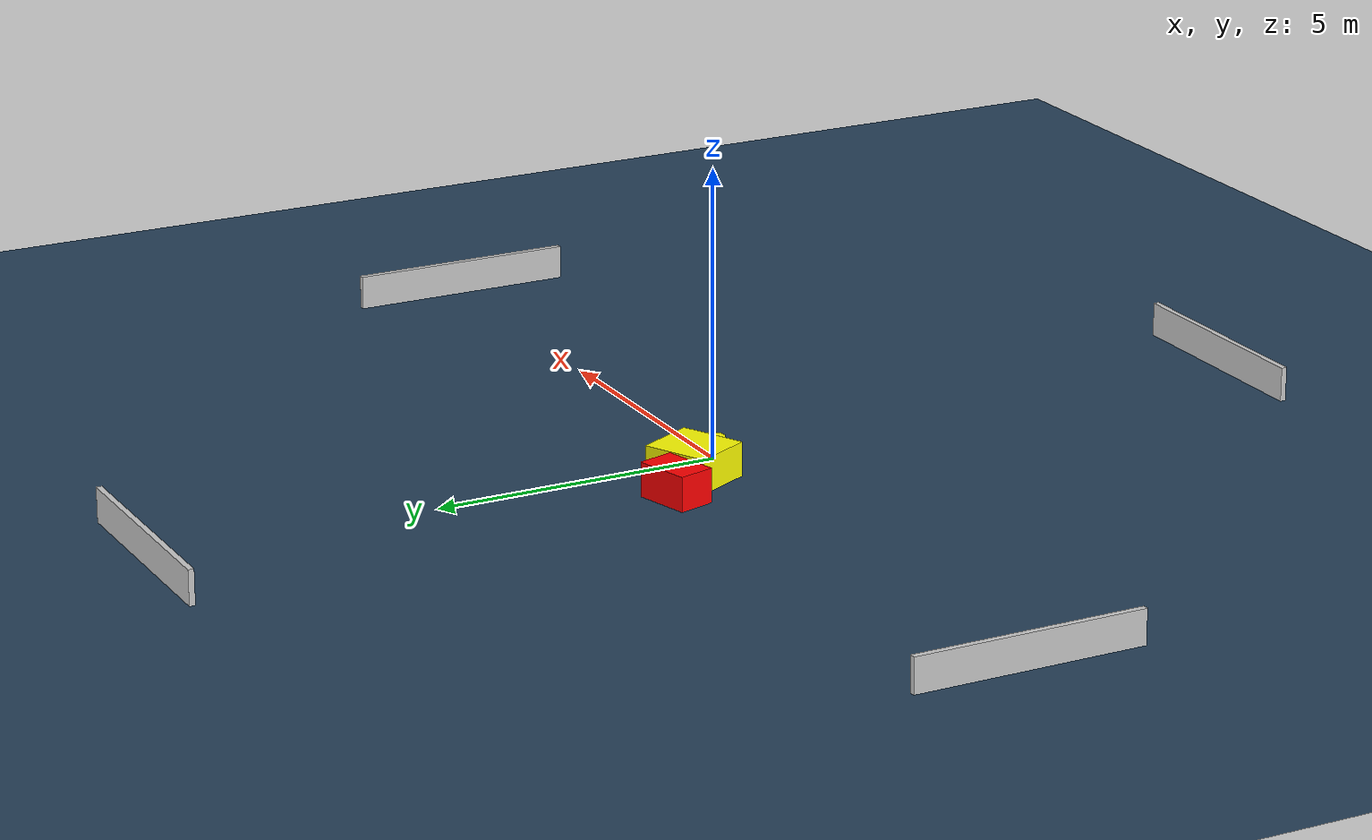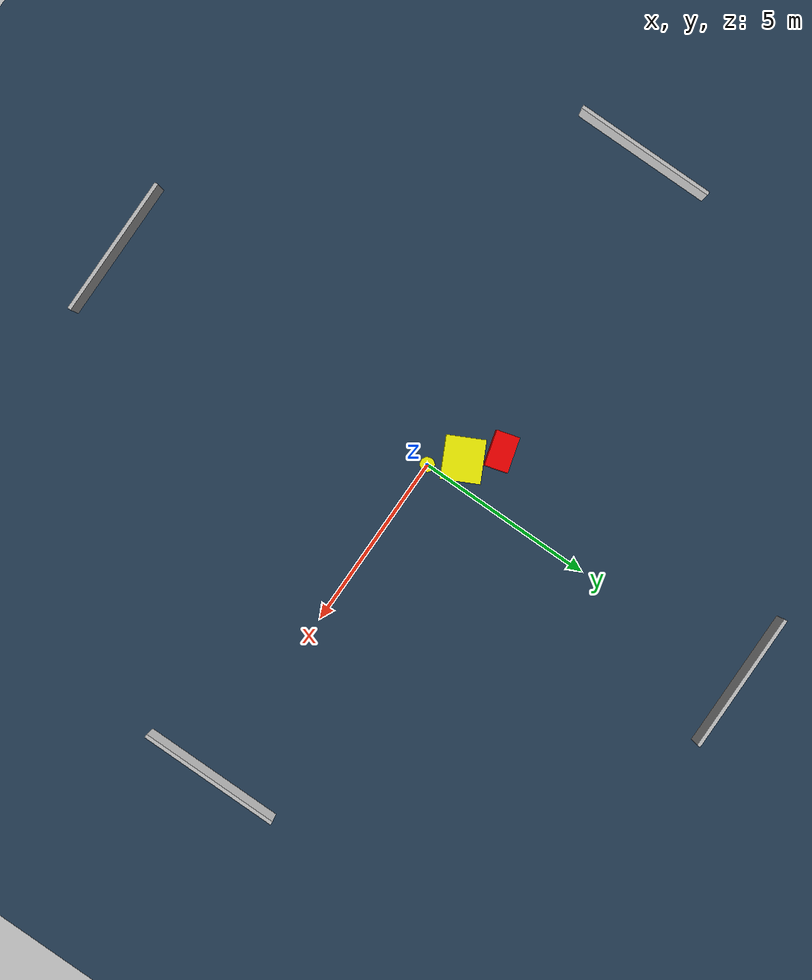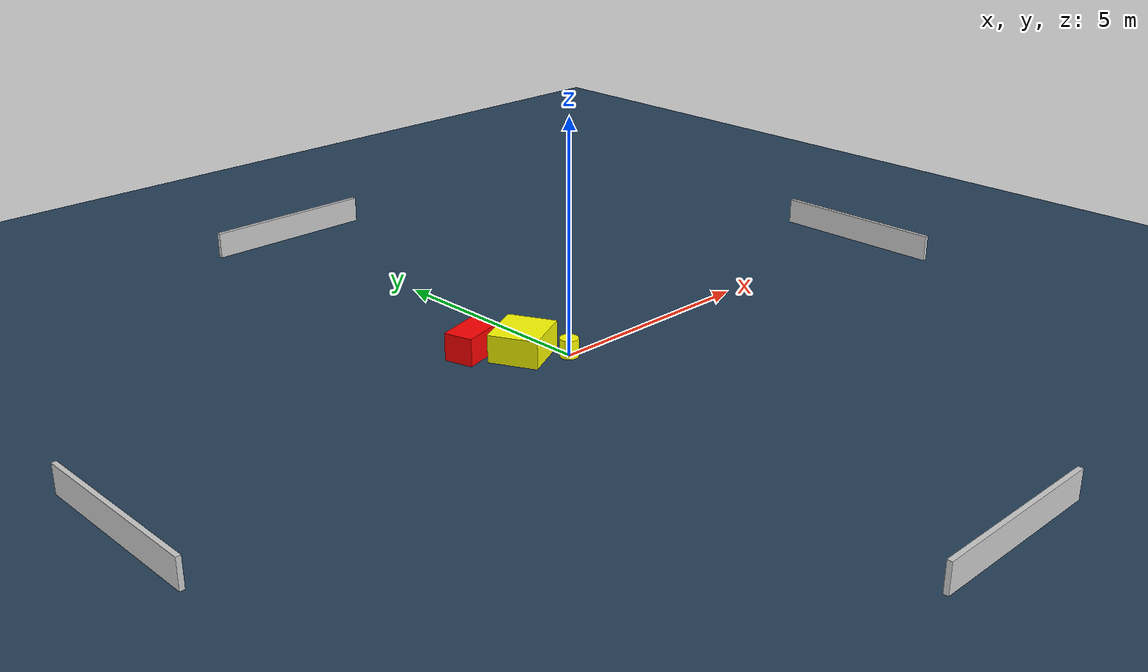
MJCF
<?xml version="1.0" ?>
<mujoco model="generated_environment">
  <option timestep="0.01" integrator="RK4" cone="elliptic"/>
  <default>
    <geom density="1"/>
  </default>
  <asset>
    <texture builtin="gradient" height="3072" name="skybox" rgb1="0.3 0.5 0.7" rgb2="0 0 0" type="skybox" width="512"/>
    <texture builtin="checker" height="300" name="groundplane" rgb1="0.2 0.3 0.4" rgb2="0.1 0.2 0.3" type="2d" width="300"/>
    <material name="groundplane" reflectance="0.2" texrepeat="5 5" texture="groundplane"/>
  </asset>
  <worldbody>
    <light dir="0 0 -1" directional="true" pos="0 0 1.5"/>
    <geom condim="3" friction="0.5 0.005 0.001" material="groundplane" name="floor" pos="0 0 0" size="0 0 0.05" type="plane"/>
    <body name="walls">
      <geom name="wall_1" condim="4" pos="-10.0 0.0 0.3" rgba="0.800000011920929 0.800000011920929 0.800000011920929 1.0" size="0.05 2.0 0.3" type="box"/>
      <geom name="wall_2" condim="4" pos="10.0 0.0 0.3" rgba="0.800000011920929 0.800000011920929 0.800000011920929 1.0" size="0.05 2.0 0.3" type="box"/>
      <geom name="wall_3" condim="4" pos="0.0 -10.0 0.3" rgba="0.800000011920929 0.800000011920929 0.800000011920929 1.0" size="2.0 0.05 0.3" type="box"/>
      <geom name="wall_4" condim="4" pos="0.0 10.0 0.3" rgba="0.800000011920929 0.800000011920929 0.800000011920929 1.0" size="2.0 0.05 0.3" type="box"/>
    </body>
    <body name="robot">
      <joint name="joint_x" type="slide" pos="0 0 0" axis="1 0 0"/>
      <joint name="joint_y" type="slide" pos="0 0 0" axis="0 1 0"/>
      <geom name="robot" type="cylinder" pos="0.0 0.0 0.2" size="0.2 0.2 0.0" mass="5.0" friction="1.0 0.005 0.0001" condim="4" rgba="1.0 1.0 0.0 1.0"/>
    </body>
    <body name="obstacle_1_movable">
      <geom name="obstacle_1_movable" condim="4" pos="-0.6437000751149476 0.6969883702239991 0.3" euler="0 0 206.57440906902517" friction="0.0 0.005 0.001" rgba="1.0 1.0 0.0 1.0" size="0.5873551038911676 0.5346349956610313 0.3" type="box" mass="0.1"/>
      <joint type="free"/>
    </body>
    <body name="obstacle_2_static">
      <geom name="obstacle_2_static" condim="4" pos="-1.3947928366819122 1.413261572793329 0.3" euler="0 0 195.54171179206807" friction="0.0 0.005 0.001" rgba="1.0 0.0 0.0 1.0" size="0.49020091878817074 0.3219532963660081 0.3" type="box"/>
    </body>
  </worldbody>
  <actuator>
    <motor name="actuator_x" joint="joint_x" gear="1" ctrlrange="-1 1"/>
    <motor name="actuator_y" joint="joint_y" gear="1" ctrlrange="-1 1"/>
  </actuator>
</mujoco>
